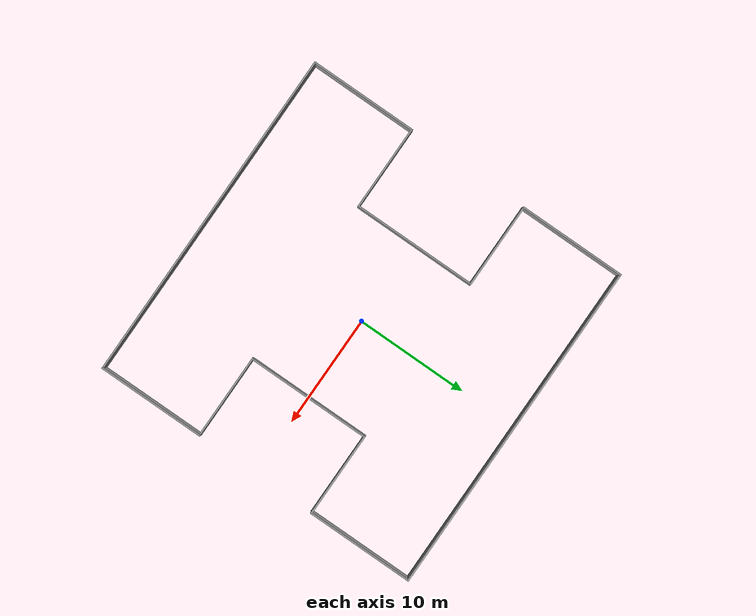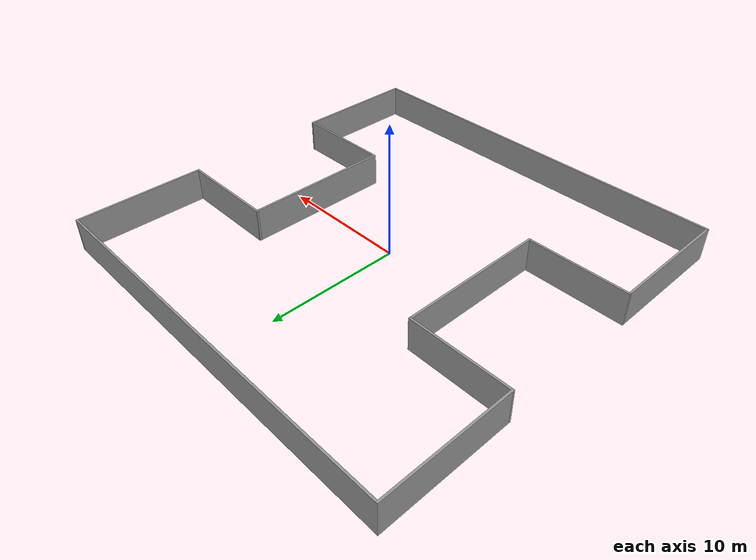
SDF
<?xml version='1.0'?>
<sdf version='1.7'>
  <model name='map3'>
    <pose>0 0 0 0 -0 0</pose>
    <link name='Wall_0'>
      <collision name='Wall_0_Collision'>
        <geometry>
          <box>
            <size>9.65 0.15 2.5</size>
          </box>
        </geometry>
        <pose>0 0 1.25 0 -0 0</pose>
      </collision>
      <visual name='Wall_0_Visual'>
        <pose>0 0 1.25 0 -0 0</pose>
        <geometry>
          <box>
            <size>9.65 0.15 2.5</size>
          </box>
        </geometry>
        <material>
          <script>
            <uri>file://media/materials/scripts/gazebo.material</uri>
            <name>Gazebo/Grey</name>
          </script>
          <ambient>1 1 1 1</ambient>
        </material>
        <meta>
          <layer>0</layer>
        </meta>
      </visual>
      <pose>-15 10.25 0 0 -0 1.5708</pose>
    </link>
    <link name='Wall_10'>
      <collision name='Wall_10_Collision'>
        <geometry>
          <box>
            <size>9.65 0.15 2.5</size>
          </box>
        </geometry>
        <pose>0 0 1.25 0 -0 0</pose>
      </collision>
      <visual name='Wall_10_Visual'>
        <pose>0 0 1.25 0 -0 0</pose>
        <geometry>
          <box>
            <size>9.65 0.15 2.5</size>
          </box>
        </geometry>
        <material>
          <script>
            <uri>file://media/materials/scripts/gazebo.material</uri>
            <name>Gazebo/Grey</name>
          </script>
          <ambient>1 1 1 1</ambient>
        </material>
        <meta>
          <layer>0</layer>
        </meta>
      </visual>
      <pose>15 -10.25 0 0 -0 -1.5708</pose>
    </link>
    <link name='Wall_12'>
      <collision name='Wall_12_Collision'>
        <geometry>
          <box>
            <size>30.15 0.15 2.5</size>
          </box>
        </geometry>
        <pose>0 0 1.25 0 -0 0</pose>
      </collision>
      <visual name='Wall_12_Visual'>
        <pose>0 0 1.25 0 -0 0</pose>
        <geometry>
          <box>
            <size>30.15 0.15 2.5</size>
          </box>
        </geometry>
        <material>
          <script>
            <uri>file://media/materials/scripts/gazebo.material</uri>
            <name>Gazebo/Grey</name>
          </script>
          <ambient>1 1 1 1</ambient>
        </material>
        <meta>
          <layer>0</layer>
        </meta>
      </visual>
      <pose>0 -15 0 0 -0 0</pose>
    </link>
    <link name='Wall_14'>
      <collision name='Wall_14_Collision'>
        <geometry>
          <box>
            <size>7.65 0.15 2.5</size>
          </box>
        </geometry>
        <pose>0 0 1.25 0 -0 0</pose>
      </collision>
      <visual name='Wall_14_Visual'>
        <pose>0 0 1.25 0 -0 0</pose>
        <geometry>
          <box>
            <size>7.65 0.15 2.5</size>
          </box>
        </geometry>
        <material>
          <script>
            <uri>file://media/materials/scripts/gazebo.material</uri>
            <name>Gazebo/Grey</name>
          </script>
          <ambient>1 1 1 1</ambient>
        </material>
        <meta>
          <layer>0</layer>
        </meta>
      </visual>
      <pose>-11.25 -5.5 0 0 -0 0</pose>
    </link>
    <link name='Wall_16'>
      <collision name='Wall_16_Collision'>
        <geometry>
          <box>
            <size>7.65 0.15 2.5</size>
          </box>
        </geometry>
        <pose>0 0 1.25 0 -0 0</pose>
      </collision>
      <visual name='Wall_16_Visual'>
        <pose>0 0 1.25 0 -0 0</pose>
        <geometry>
          <box>
            <size>7.65 0.15 2.5</size>
          </box>
        </geometry>
        <material>
          <script>
            <uri>file://media/materials/scripts/gazebo.material</uri>
            <name>Gazebo/Grey</name>
          </script>
          <ambient>1 1 1 1</ambient>
        </material>
        <meta>
          <layer>0</layer>
        </meta>
      </visual>
      <pose>11.25 -5.5 0 0 -0 0</pose>
    </link>
    <link name='Wall_18'>
      <collision name='Wall_18_Collision'>
        <geometry>
          <box>
            <size>7.65 0.15 2.5</size>
          </box>
        </geometry>
        <pose>0 0 1.25 0 -0 0</pose>
      </collision>
      <visual name='Wall_18_Visual'>
        <pose>0 0 1.25 0 -0 0</pose>
        <geometry>
          <box>
            <size>7.65 0.15 2.5</size>
          </box>
        </geometry>
        <material>
          <script>
            <uri>file://media/materials/scripts/gazebo.material</uri>
            <name>Gazebo/Grey</name>
          </script>
          <ambient>1 1 1 1</ambient>
        </material>
        <meta>
          <layer>0</layer>
        </meta>
      </visual>
      <pose>-11.25 5.5 0 0 -0 0</pose>
    </link>
    <link name='Wall_2'>
      <collision name='Wall_2_Collision'>
        <geometry>
          <box>
            <size>11.15 0.15 2.5</size>
          </box>
        </geometry>
        <pose>0 0 1.25 0 -0 0</pose>
      </collision>
      <visual name='Wall_2_Visual'>
        <pose>0 0 1.25 0 -0 0</pose>
        <geometry>
          <box>
            <size>11.15 0.15 2.5</size>
          </box>
        </geometry>
        <material>
          <script>
            <uri>file://media/materials/scripts/gazebo.material</uri>
            <name>Gazebo/Grey</name>
          </script>
          <ambient>1 1 1 1</ambient>
        </material>
        <meta>
          <layer>0</layer>
        </meta>
      </visual>
      <pose>-7.5 0 0 0 -0 1.5708</pose>
    </link>
    <link name='Wall_20'>
      <collision name='Wall_20_Collision'>
        <geometry>
          <box>
            <size>7.65 0.15 2.5</size>
          </box>
        </geometry>
        <pose>0 0 1.25 0 -0 0</pose>
      </collision>
      <visual name='Wall_20_Visual'>
        <pose>0 0 1.25 0 -0 0</pose>
        <geometry>
          <box>
            <size>7.65 0.15 2.5</size>
          </box>
        </geometry>
        <material>
          <script>
            <uri>file://media/materials/scripts/gazebo.material</uri>
            <name>Gazebo/Grey</name>
          </script>
          <ambient>1 1 1 1</ambient>
        </material>
        <meta>
          <layer>0</layer>
        </meta>
      </visual>
      <pose>11.25 5.5 0 0 -0 0</pose>
    </link>
    <link name='Wall_22'>
      <collision name='Wall_22_Collision'>
        <geometry>
          <box>
            <size>30.15 0.15 2.5</size>
          </box>
        </geometry>
        <pose>0 0 1.25 0 -0 0</pose>
      </collision>
      <visual name='Wall_22_Visual'>
        <pose>0 0 1.25 0 -0 0</pose>
        <geometry>
          <box>
            <size>30.15 0.15 2.5</size>
          </box>
        </geometry>
        <material>
          <script>
            <uri>file://media/materials/scripts/gazebo.material</uri>
            <name>Gazebo/Grey</name>
          </script>
          <ambient>1 1 1 1</ambient>
        </material>
        <meta>
          <layer>0</layer>
        </meta>
      </visual>
      <pose>0 15 0 0 -0 0</pose>
    </link>
    <link name='Wall_4'>
      <collision name='Wall_4_Collision'>
        <geometry>
          <box>
            <size>9.65 0.15 2.5</size>
          </box>
        </geometry>
        <pose>0 0 1.25 0 -0 0</pose>
      </collision>
      <visual name='Wall_4_Visual'>
        <pose>0 0 1.25 0 -0 0</pose>
        <geometry>
          <box>
            <size>9.65 0.15 2.5</size>
          </box>
        </geometry>
        <material>
          <script>
            <uri>file://media/materials/scripts/gazebo.material</uri>
            <name>Gazebo/Grey</name>
          </script>
          <ambient>1 1 1 1</ambient>
        </material>
        <meta>
          <layer>0</layer>
        </meta>
      </visual>
      <pose>-15 -10.25 0 0 -0 -1.5708</pose>
    </link>
    <link name='Wall_6'>
      <collision name='Wall_6_Collision'>
        <geometry>
          <box>
            <size>11.15 0.15 2.5</size>
          </box>
        </geometry>
        <pose>0 0 1.25 0 -0 0</pose>
      </collision>
      <visual name='Wall_6_Visual'>
        <pose>0 0 1.25 0 -0 0</pose>
        <geometry>
          <box>
            <size>11.15 0.15 2.5</size>
          </box>
        </geometry>
        <material>
          <script>
            <uri>file://media/materials/scripts/gazebo.material</uri>
            <name>Gazebo/Grey</name>
          </script>
          <ambient>1 1 1 1</ambient>
        </material>
        <meta>
          <layer>0</layer>
        </meta>
      </visual>
      <pose>7.5 0 0 0 -0 -1.5708</pose>
    </link>
    <link name='Wall_8'>
      <collision name='Wall_8_Collision'>
        <geometry>
          <box>
            <size>9.65 0.15 2.5</size>
          </box>
        </geometry>
        <pose>0 0 1.25 0 -0 0</pose>
      </collision>
      <visual name='Wall_8_Visual'>
        <pose>0 0 1.25 0 -0 0</pose>
        <geometry>
          <box>
            <size>9.65 0.15 2.5</size>
          </box>
        </geometry>
        <material>
          <script>
            <uri>file://media/materials/scripts/gazebo.material</uri>
            <name>Gazebo/Grey</name>
          </script>
          <ambient>1 1 1 1</ambient>
        </material>
        <meta>
          <layer>0</layer>
        </meta>
      </visual>
      <pose>15 10.25 0 0 -0 -1.5708</pose>
    </link>
    <static>1</static>
  </model>
</sdf>
